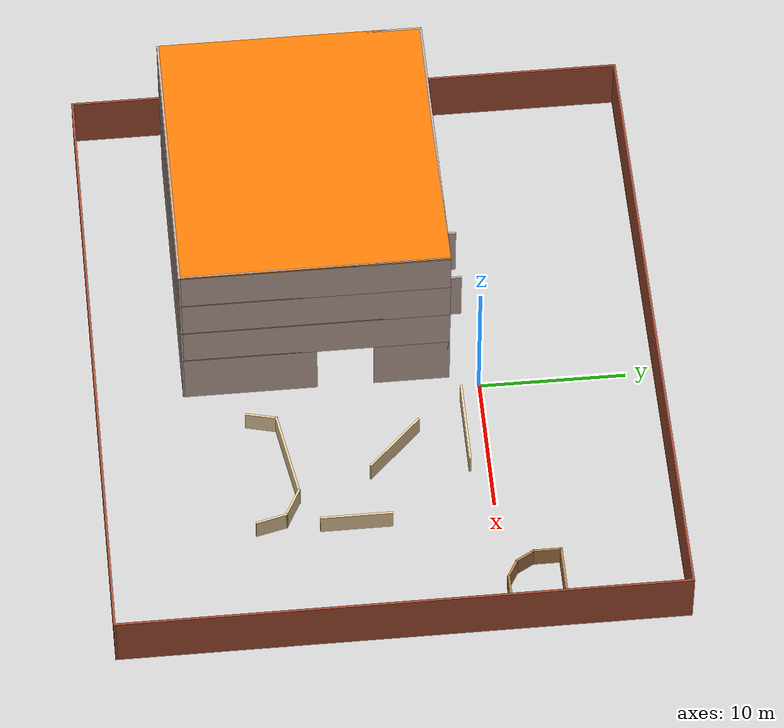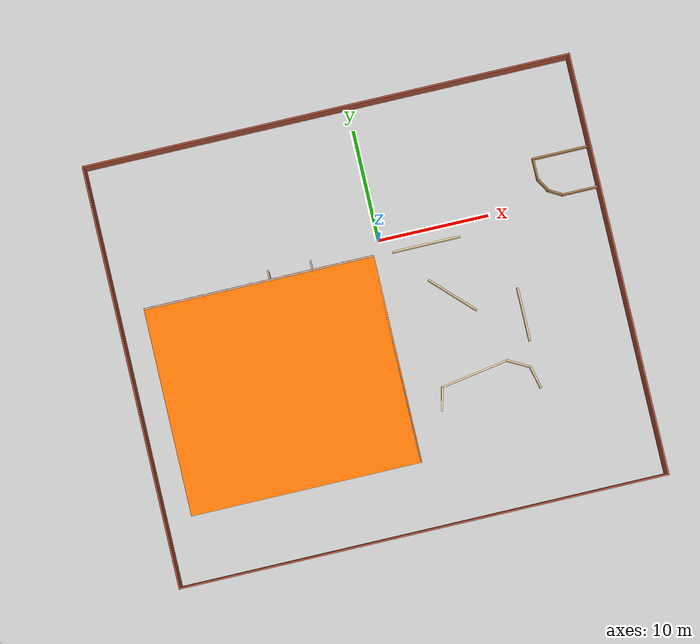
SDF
<sdf version="1.6">
 <world name="default">
  <light name="sun" type="directional">
   <pose>0 0 10 0 -0 0</pose>
   <diffuse>0.8 0.8 0.8 1</diffuse>
   <specular>0.2 0.2 0.2 1</specular>
   <attenuation>
    <range>1000</range>
    <constant>0.9</constant>
    <linear>0.01</linear>
    <quadratic>0.001</quadratic>
   </attenuation>
   <direction>-0.5 0.1 -0.9</direction>
  </light>
  <model name="ground_plane">
   <static>1</static>
   <link name="link">
    <collision name="collision">
     <geometry><plane><normal>0 0 1</normal><size>100 100</size></plane></geometry>
     <surface><friction><ode><mu>100</mu><mu2>50</mu2></ode></friction></surface>
    </collision>
    <visual name="visual">
     <cast_shadows>0</cast_shadows>
     <geometry><plane><normal>0 0 1</normal><size>100 100</size></plane></geometry>
     <material>
      <script><uri>file://media/materials/scripts/gazebo.material</uri><name>Gazebo/Grey</name></script>
     </material>
    </visual>
   </link>
  </model>
  <gravity>0 0 -9.8</gravity>
  <magnetic_field>6e-06 2.3e-05 -4.2e-05</magnetic_field>
  <atmosphere type="adiabatic"/>
  <physics name="default_physics" default="0" type="ode">
   <max_step_size>0.001</max_step_size>
   <real_time_factor>1</real_time_factor>
   <real_time_update_rate>1000</real_time_update_rate>
  </physics>
  <scene><ambient>0.4 0.4 0.4 1</ambient><background>0.7 0.7 0.7 1</background><shadows>1</shadows></scene>
  <audio><device>default</device></audio>
  <spherical_coordinates>
   <surface_model>EARTH_WGS84</surface_model>
   <latitude_deg>0</latitude_deg>
   <longitude_deg>0</longitude_deg>
   <elevation>0</elevation>
   <heading_deg>0</heading_deg>
  </spherical_coordinates>
  <model name="building2">
   <pose>-11 -10.325 0 0 -0 0</pose>
   <link name="Floor_0">
    <collision name="Floor_0_Collision">
     <geometry><box><size>20.15 18.15 0.1</size></box></geometry>
     <pose>0 0 0.05 0 -0 0</pose>
    </collision>
    <visual name="Floor_0_Visual">
     <pose>0 0 0.05 0 -0 0</pose>
     <geometry><box><size>20.15 18.15 0.1</size></box></geometry>
     <material>
      <script><uri>file://media/materials/scripts/gazebo.material</uri><name>Gazebo/Grey</name></script>
      <ambient>1 1 1 1</ambient>
     </material>
     <meta><layer>1</layer></meta>
    </visual>
    <pose>-0 -0.675 4 0 -0 0</pose>
   </link>
   <link name="Floor_2">
    <collision name="Floor_2_Collision">
     <geometry><box><size>20.15 18.15 0.1</size></box></geometry>
     <pose>0 0 0.05 0 -0 0</pose>
    </collision>
    <visual name="Floor_2_Visual">
     <pose>0 0 0.05 0 -0 0</pose>
     <geometry><box><size>20.15 18.15 0.1</size></box></geometry>
     <material>
      <script><uri>file://media/materials/scripts/gazebo.material</uri><name>Gazebo/Grey</name></script>
      <ambient>1 1 1 1</ambient>
     </material>
     <meta><layer>2</layer></meta>
    </visual>
    <pose>-0 -0.675 7 0 -0 0</pose>
   </link>
   <link name="Floor_3">
    <collision name="Floor_3_Collision">
     <geometry><box><size>20.15 18.15 0.1</size></box></geometry>
     <pose>0 0 0.05 0 -0 0</pose>
    </collision>
    <visual name="Floor_3_Visual">
     <pose>0 0 0.05 0 -0 0</pose>
     <geometry><box><size>20.15 18.15 0.1</size></box></geometry>
     <material>
      <script><uri>file://media/materials/scripts/gazebo.material</uri><name>Gazebo/Grey</name></script>
      <ambient>1 1 1 1</ambient>
     </material>
     <meta><layer>3</layer></meta>
    </visual>
    <pose>-0 -0.675 10 0 -0 0</pose>
   </link>
   <link name="Floor_8">
    <collision name="Floor_8_Collision">
     <geometry><box><size>20.15 18.15 0.1</size></box></geometry>
     <pose>0 0 0.05 0 -0 0</pose>
    </collision>
    <visual name="Floor_8_Visual">
     <pose>0 0 0.05 0 -0 0</pose>
     <geometry><box><size>20.15 18.15 0.1</size></box></geometry>
     <material>
      <script><uri>file://media/materials/scripts/gazebo.material</uri><name>Gazebo/Grey</name></script>
      <ambient>0.996078 0.47451 0.0196078 1</ambient>
     </material>
     <meta><layer>4</layer></meta>
    </visual>
    <pose>-0 -0.675 13 0 -0 0</pose>
   </link>
   <link name="Wall_11">
    <collision name="Wall_11_Collision">
     <geometry><box><size>1.5 0.15 4</size></box></geometry>
     <pose>0 0 2 0 -0 0</pose>
    </collision>
    <visual name="Wall_11_Visual">
     <pose>0 0 2 0 -0 0</pose>
     <geometry><box><size>1.5 0.15 4</size></box></geometry>
     <material>
      <script><uri>file://media/materials/scripts/gazebo.material</uri><name>Gazebo/Grey</name></script>
      <ambient>0.760784 0.662745 0.627451 1</ambient>
     </material>
     <meta><layer>0</layer></meta>
    </visual>
    <pose>0.8 9 0 0 -0 -1.5708</pose>
   </link>
   <link name="Wall_12">
    <collision name="Wall_12_Collision">
     <geometry><box><size>10.95 0.15 4</size></box></geometry>
     <pose>0 0 2 0 -0 0</pose>
    </collision>
    <visual name="Wall_12_Visual">
     <pose>0 0 2 0 -0 0</pose>
     <geometry><box><size>10.95 0.15 4</size></box></geometry>
     <material>
      <script><uri>file://media/materials/scripts/gazebo.material</uri><name>Gazebo/Grey</name></script>
      <ambient>0.760784 0.662745 0.627451 1</ambient>
     </material>
     <meta><layer>0</layer></meta>
    </visual>
    <pose>-4.6 8.325 0 0 -0 3.14159</pose>
   </link>
   <link name="Wall_14">
    <collision name="Wall_14_Collision">
     <geometry><box><size>18.15 0.15 4</size></box></geometry>
     <pose>0 0 2 0 -0 0</pose>
    </collision>
    <visual name="Wall_14_Visual">
     <pose>0 0 2 0 -0 0</pose>
     <geometry><box><size>18.15 0.15 4</size></box></geometry>
     <material>
      <script><uri>file://media/materials/scripts/gazebo.material</uri><name>Gazebo/Grey</name></script>
      <ambient>0.760784 0.662745 0.627451 1</ambient>
     </material>
     <meta><layer>0</layer></meta>
    </visual>
    <pose>-10 -0.675 0 0 -0 -1.5708</pose>
   </link>
   <link name="Wall_16">
    <collision name="Wall_16_Collision">
     <geometry><box><size>20.15 0.15 4</size></box></geometry>
     <pose>0 0 2 0 -0 0</pose>
    </collision>
    <visual name="Wall_16_Visual">
     <pose>0 0 2 0 -0 0</pose>
     <geometry><box><size>20.15 0.15 4</size></box></geometry>
     <material>
      <script><uri>file://media/materials/scripts/gazebo.material</uri><name>Gazebo/Grey</name></script>
      <ambient>0.760784 0.662745 0.627451 1</ambient>
     </material>
     <meta><layer>0</layer></meta>
    </visual>
    <pose>-0 -9.675 0 0 -0 0</pose>
   </link>
   <link name="Wall_24">
    <collision name="Wall_24_Collision">
     <geometry><box><size>18.15 0.15 3</size></box></geometry>
     <pose>0 0 1.5 0 -0 0</pose>
    </collision>
    <visual name="Wall_24_Visual">
     <pose>0 0 1.5 0 -0 0</pose>
     <geometry><box><size>18.15 0.15 3</size></box></geometry>
     <material>
      <script><uri>file://media/materials/scripts/gazebo.material</uri><name>Gazebo/Grey</name></script>
      <ambient>0.760784 0.662745 0.627451 1</ambient>
     </material>
     <meta><layer>1</layer></meta>
    </visual>
    <pose>-10 -0.675 4 0 -0 -1.5708</pose>
   </link>
   <link name="Wall_25">
    <collision name="Wall_25_Collision">
     <geometry><box><size>20.15 0.15 3</size></box></geometry>
     <pose>0 0 1.5 0 -0 0</pose>
    </collision>
    <visual name="Wall_25_Visual">
     <pose>0 0 1.5 0 -0 0</pose>
     <geometry><box><size>20.15 0.15 3</size></box></geometry>
     <material>
      <script><uri>file://media/materials/scripts/gazebo.material</uri><name>Gazebo/Grey</name></script>
      <ambient>0.760784 0.662745 0.627451 1</ambient>
     </material>
     <meta><layer>1</layer></meta>
    </visual>
    <pose>-0 -9.675 4 0 -0 0</pose>
   </link>
   <link name="Wall_31">
    <collision name="Wall_31_Collision">
     <geometry><box><size>20.15 0.15 3</size></box></geometry>
     <pose>0 0 1.5 0 -0 0</pose>
    </collision>
    <visual name="Wall_31_Visual">
     <pose>0 0 1.5 0 -0 0</pose>
     <geometry><box><size>20.15 0.15 3</size></box></geometry>
     <material>
      <script><uri>file://media/materials/scripts/gazebo.material</uri><name>Gazebo/Grey</name></script>
      <ambient>0.760784 0.662745 0.627451 1</ambient>
     </material>
     <meta><layer>1</layer></meta>
    </visual>
    <pose>-0 8.325 4 0 -0 0</pose>
   </link>
   <link name="Wall_33">
    <collision name="Wall_33_Collision">
     <geometry><box><size>18 0.15 3</size></box></geometry>
     <pose>0 0 1.5 0 -0 0</pose>
    </collision>
    <visual name="Wall_33_Visual">
     <pose>0 0 1.5 0 -0 0</pose>
     <geometry><box><size>18 0.15 3</size></box></geometry>
     <material>
      <script><uri>file://media/materials/scripts/gazebo.material</uri><name>Gazebo/Grey</name></script>
      <ambient>0.760784 0.662745 0.627451 1</ambient>
     </material>
     <meta><layer>1</layer></meta>
    </visual>
    <pose>10 -0.6 4 0 -0 -1.5708</pose>
   </link>
   <link name="Wall_4">
    <collision name="Wall_4_Collision">
     <geometry><box><size>5.15 0.15 4</size></box></geometry>
     <pose>0 0 2 0 -0 0</pose>
    </collision>
    <visual name="Wall_4_Visual">
     <pose>0 0 2 0 -0 0</pose>
     <geometry><box><size>5.15 0.15 4</size></box></geometry>
     <material>
      <script><uri>file://media/materials/scripts/gazebo.material</uri><name>Gazebo/Grey</name></script>
      <ambient>0.760784 0.662745 0.627451 1</ambient>
     </material>
     <meta><layer>0</layer></meta>
    </visual>
    <pose>10 5.825 0 0 -0 -1.5708</pose>
   </link>
   <link name="Wall_42">
    <collision name="Wall_42_Collision">
     <geometry><box><size>18.15 0.15 3</size></box></geometry>
     <pose>0 0 1.5 0 -0 0</pose>
    </collision>
    <visual name="Wall_42_Visual">
     <pose>0 0 1.5 0 -0 0</pose>
     <geometry><box><size>18.15 0.15 3</size></box></geometry>
     <material>
      <script><uri>file://media/materials/scripts/gazebo.material</uri><name>Gazebo/Grey</name></script>
      <ambient>0.760784 0.662745 0.627451 1</ambient>
     </material>
     <meta><layer>2</layer></meta>
    </visual>
    <pose>-10 -0.675 7 0 -0 -1.5708</pose>
   </link>
   <link name="Wall_43">
    <collision name="Wall_43_Collision">
     <geometry><box><size>20.15 0.15 3</size></box></geometry>
     <pose>0 0 1.5 0 -0 0</pose>
    </collision>
    <visual name="Wall_43_Visual">
     <pose>0 0 1.5 0 -0 0</pose>
     <geometry><box><size>20.15 0.15 3</size></box></geometry>
     <material>
      <script><uri>file://media/materials/scripts/gazebo.material</uri><name>Gazebo/Grey</name></script>
      <ambient>0.760784 0.662745 0.627451 1</ambient>
     </material>
     <meta><layer>2</layer></meta>
    </visual>
    <pose>-0 -9.675 7 0 -0 0</pose>
   </link>
   <link name="Wall_44">
    <collision name="Wall_44_Collision">
     <geometry><box><size>20.15 0.15 3</size></box></geometry>
     <pose>0 0 1.5 0 -0 0</pose>
    </collision>
    <visual name="Wall_44_Visual">
     <pose>0 0 1.5 0 -0 0</pose>
     <geometry><box><size>20.15 0.15 3</size></box></geometry>
     <material>
      <script><uri>file://media/materials/scripts/gazebo.material</uri><name>Gazebo/Grey</name></script>
      <ambient>0.760784 0.662745 0.627451 1</ambient>
     </material>
     <meta><layer>2</layer></meta>
    </visual>
    <pose>-0 8.325 7 0 -0 0</pose>
   </link>
   <link name="Wall_45">
    <collision name="Wall_45_Collision">
     <geometry><box><size>18 0.15 3</size></box></geometry>
     <pose>0 0 1.5 0 -0 0</pose>
    </collision>
    <visual name="Wall_45_Visual">
     <pose>0 0 1.5 0 -0 0</pose>
     <geometry><box><size>18 0.15 3</size></box></geometry>
     <material>
      <script><uri>file://media/materials/scripts/gazebo.material</uri><name>Gazebo/Grey</name></script>
      <ambient>0.760784 0.662745 0.627451 1</ambient>
     </material>
     <meta><layer>2</layer></meta>
    </visual>
    <pose>10 -0.6 7 0 -0 -1.5708</pose>
   </link>
   <link name="Wall_46">
    <collision name="Wall_46_Collision">
     <geometry><box><size>18.15 0.15 3</size></box></geometry>
     <pose>0 0 1.5 0 -0 0</pose>
    </collision>
    <visual name="Wall_46_Visual">
     <pose>0 0 1.5 0 -0 0</pose>
     <geometry><box><size>18.15 0.15 3</size></box></geometry>
     <material>
      <script><uri>file://media/materials/scripts/gazebo.material</uri><name>Gazebo/Grey</name></script>
      <ambient>0.760784 0.662745 0.627451 1</ambient>
     </material>
     <meta><layer>3</layer></meta>
    </visual>
    <pose>-10 -0.675 10 0 -0 -1.5708</pose>
   </link>
   <link name="Wall_47">
    <collision name="Wall_47_Collision">
     <geometry><box><size>20.15 0.15 3</size></box></geometry>
     <pose>0 0 1.5 0 -0 0</pose>
    </collision>
    <visual name="Wall_47_Visual">
     <pose>0 0 1.5 0 -0 0</pose>
     <geometry><box><size>20.15 0.15 3</size></box></geometry>
     <material>
      <script><uri>file://media/materials/scripts/gazebo.material</uri><name>Gazebo/Grey</name></script>
      <ambient>0.760784 0.662745 0.627451 1</ambient>
     </material>
     <meta><layer>3</layer></meta>
    </visual>
    <pose>-0 -9.675 10 0 -0 0</pose>
   </link>
   <link name="Wall_48">
    <collision name="Wall_48_Collision">
     <geometry><box><size>20.15 0.15 3</size></box></geometry>
     <pose>0 0 1.5 0 -0 0</pose>
    </collision>
    <visual name="Wall_48_Visual">
     <pose>0 0 1.5 0 -0 0</pose>
     <geometry><box><size>20.15 0.15 3</size></box></geometry>
     <material>
      <script><uri>file://media/materials/scripts/gazebo.material</uri><name>Gazebo/Grey</name></script>
      <ambient>0.760784 0.662745 0.627451 1</ambient>
     </material>
     <meta><layer>3</layer></meta>
    </visual>
    <pose>-0 8.325 10 0 -0 0</pose>
   </link>
   <link name="Wall_49">
    <collision name="Wall_49_Collision">
     <geometry><box><size>18 0.15 3</size></box></geometry>
     <pose>0 0 1.5 0 -0 0</pose>
    </collision>
    <visual name="Wall_49_Visual">
     <pose>0 0 1.5 0 -0 0</pose>
     <geometry><box><size>18 0.15 3</size></box></geometry>
     <material>
      <script><uri>file://media/materials/scripts/gazebo.material</uri><name>Gazebo/Grey</name></script>
      <ambient>0.760784 0.662745 0.627451 1</ambient>
     </material>
     <meta><layer>3</layer></meta>
    </visual>
    <pose>10 -0.6 10 0 -0 -1.5708</pose>
   </link>
   <link name="Wall_6">
    <collision name="Wall_6_Collision">
     <geometry><box><size>9.15 0.15 4</size></box></geometry>
     <pose>0 0 2 0 -0 0</pose>
    </collision>
    <visual name="Wall_6_Visual">
     <pose>0 0 2 0 -0 0</pose>
     <geometry><box><size>9.15 0.15 4</size></box></geometry>
     <material>
      <script><uri>file://media/materials/scripts/gazebo.material</uri><name>Gazebo/Grey</name></script>
      <ambient>0.760784 0.662745 0.627451 1</ambient>
     </material>
     <meta><layer>0</layer></meta>
    </visual>
    <pose>10 -5.175 0 0 -0 -1.5708</pose>
   </link>
   <link name="Wall_76">
    <collision name="Wall_76_Collision">
     <geometry><box><size>18.15 0.15 0.1</size></box></geometry>
     <pose>0 0 0.05 0 -0 0</pose>
    </collision>
    <visual name="Wall_76_Visual">
     <pose>0 0 0.05 0 -0 0</pose>
     <geometry><box><size>18.15 0.15 0.1</size></box></geometry>
     <material>
      <script><uri>file://media/materials/scripts/gazebo.material</uri><name>Gazebo/Grey</name></script>
      <ambient>0.760784 0.662745 0.627451 1</ambient>
     </material>
     <meta><layer>4</layer></meta>
    </visual>
    <pose>-10 -0.675 13 0 -0 -1.5708</pose>
   </link>
   <link name="Wall_77">
    <collision name="Wall_77_Collision">
     <geometry><box><size>20.15 0.15 0.1</size></box></geometry>
     <pose>0 0 0.05 0 -0 0</pose>
    </collision>
    <visual name="Wall_77_Visual">
     <pose>0 0 0.05 0 -0 0</pose>
     <geometry><box><size>20.15 0.15 0.1</size></box></geometry>
     <material>
      <script><uri>file://media/materials/scripts/gazebo.material</uri><name>Gazebo/Grey</name></script>
      <ambient>0.760784 0.662745 0.627451 1</ambient>
     </material>
     <meta><layer>4</layer></meta>
    </visual>
    <pose>-0 -9.675 13 0 -0 0</pose>
   </link>
   <link name="Wall_78">
    <collision name="Wall_78_Collision">
     <geometry><box><size>20.15 0.15 0.1</size></box></geometry>
     <pose>0 0 0.05 0 -0 0</pose>
    </collision>
    <visual name="Wall_78_Visual">
     <pose>0 0 0.05 0 -0 0</pose>
     <geometry><box><size>20.15 0.15 0.1</size></box></geometry>
     <material>
      <script><uri>file://media/materials/scripts/gazebo.material</uri><name>Gazebo/Grey</name></script>
      <ambient>0.760784 0.662745 0.627451 1</ambient>
     </material>
     <meta><layer>4</layer></meta>
    </visual>
    <pose>-0 8.325 13 0 -0 0</pose>
   </link>
   <link name="Wall_79">
    <collision name="Wall_79_Collision">
     <geometry><box><size>18 0.15 0.1</size></box></geometry>
     <pose>0 0 0.05 0 -0 0</pose>
    </collision>
    <visual name="Wall_79_Visual">
     <pose>0 0 0.05 0 -0 0</pose>
     <geometry><box><size>18 0.15 0.1</size></box></geometry>
     <material>
      <script><uri>file://media/materials/scripts/gazebo.material</uri><name>Gazebo/Grey</name></script>
      <ambient>0.760784 0.662745 0.627451 1</ambient>
     </material>
     <meta><layer>4</layer></meta>
    </visual>
    <pose>10 -0.6 13 0 -0 -1.5708</pose>
   </link>
   <link name="Wall_8">
    <collision name="Wall_8_Collision">
     <geometry><box><size>5.5 0.15 4</size></box></geometry>
     <pose>0 0 2 0 -0 0</pose>
    </collision>
    <visual name="Wall_8_Visual">
     <pose>0 0 2 0 -0 0</pose>
     <geometry><box><size>5.5 0.15 4</size></box></geometry>
     <material>
      <script><uri>file://media/materials/scripts/gazebo.material</uri><name>Gazebo/Grey</name></script>
      <ambient>0.760784 0.662745 0.627451 1</ambient>
     </material>
     <meta><layer>0</layer></meta>
    </visual>
    <pose>7.325 8.325 0 0 -0 3.14159</pose>
   </link>
   <link name="Wall_9">
    <collision name="Wall_9_Collision">
     <geometry><box><size>1.5 0.15 4</size></box></geometry>
     <pose>0 0 2 0 -0 0</pose>
    </collision>
    <visual name="Wall_9_Visual">
     <pose>0 0 2 0 -0 0</pose>
     <geometry><box><size>1.5 0.15 4</size></box></geometry>
     <material>
      <script><uri>file://media/materials/scripts/gazebo.material</uri><name>Gazebo/Grey</name></script>
      <ambient>0.760784 0.662745 0.627451 1</ambient>
     </material>
     <meta><layer>0</layer></meta>
    </visual>
    <pose>4.65 9 0 0 -0 1.5708</pose>
   </link>
   <static>1</static>
  </model>
  <model name="wall11">
   <pose>-2 -7 0 0 -0 0</pose>
   <link name="Wall_0">
    <collision name="Wall_0_Collision">
     <geometry><box><size>44.15 0.15 4</size></box></geometry>
     <pose>0 0 2 0 -0 0</pose>
    </collision>
    <visual name="Wall_0_Visual">
     <pose>0 0 2 0 -0 0</pose>
     <geometry><box><size>44.15 0.15 4</size></box></geometry>
     <material>
      <script><uri>file://media/materials/scripts/gazebo.material</uri><name>Gazebo/Bricks</name></script>
      <ambient>1 1 1 1</ambient>
     </material>
     <meta><layer>0</layer></meta>
    </visual>
    <pose>0 19 0 0 -0 0</pose>
   </link>
   <link name="Wall_2">
    <collision name="Wall_2_Collision">
     <geometry><box><size>38.15 0.15 4</size></box></geometry>
     <pose>0 0 2 0 -0 0</pose>
    </collision>
    <visual name="Wall_2_Visual">
     <pose>0 0 2 0 -0 0</pose>
     <geometry><box><size>38.15 0.15 4</size></box></geometry>
     <material>
      <script><uri>file://media/materials/scripts/gazebo.material</uri><name>Gazebo/Bricks</name></script>
      <ambient>1 1 1 1</ambient>
     </material>
     <meta><layer>0</layer></meta>
    </visual>
    <pose>22 0 0 0 -0 -1.5708</pose>
   </link>
   <link name="Wall_4">
    <collision name="Wall_4_Collision">
     <geometry><box><size>44.15 0.15 4</size></box></geometry>
     <pose>0 0 2 0 -0 0</pose>
    </collision>
    <visual name="Wall_4_Visual">
     <pose>0 0 2 0 -0 0</pose>
     <geometry><box><size>44.15 0.15 4</size></box></geometry>
     <material>
      <script><uri>file://media/materials/scripts/gazebo.material</uri><name>Gazebo/Bricks</name></script>
      <ambient>1 1 1 1</ambient>
     </material>
     <meta><layer>0</layer></meta>
    </visual>
    <pose>0 -19 0 0 -0 3.14159</pose>
   </link>
   <link name="Wall_6">
    <collision name="Wall_6_Collision">
     <geometry><box><size>38.15 0.15 4</size></box></geometry>
     <pose>0 0 2 0 -0 0</pose>
    </collision>
    <visual name="Wall_6_Visual">
     <pose>0 0 2 0 -0 0</pose>
     <geometry><box><size>38.15 0.15 4</size></box></geometry>
     <material>
      <script><uri>file://media/materials/scripts/gazebo.material</uri><name>Gazebo/Bricks</name></script>
      <ambient>1 1 1 1</ambient>
     </material>
     <meta><layer>0</layer></meta>
    </visual>
    <pose>-22 0 0 0 -0 1.5708</pose>
   </link>
   <static>1</static>
  </model>
  <model name="Untitled112">
   <pose>6.00798 -8.67297 0 0 -0 0</pose>
   <link name="Wall_0">
    <collision name="Wall_0_Collision">
     <geometry><box><size>6.15 0.15 1.5</size></box></geometry>
     <pose>0 0 0.75 0 -0 0</pose>
    </collision>
    <visual name="Wall_0_Visual">
     <pose>0 0 0.75 0 -0 0</pose>
     <geometry><box><size>6.15 0.15 1.5</size></box></geometry>
     <material>
      <script><uri>file://media/materials/scripts/gazebo.material</uri><name>Gazebo/Grey</name></script>
      <ambient>0.921569 0.807843 0.615686 1</ambient>
     </material>
     <meta><layer>0</layer></meta>
    </visual>
    <pose>-2.00798 7.34298 0 0 -0 0</pose>
   </link>
   <link name="Wall_10">
    <collision name="Wall_10_Collision">
     <geometry><box><size>2.21155 0.15 1.5</size></box></geometry>
     <pose>0 0 0.75 0 -0 0</pose>
    </collision>
    <visual name="Wall_10_Visual">
     <pose>0 0 0.75 0 -0 0</pose>
     <geometry><box><size>2.21155 0.15 1.5</size></box></geometry>
     <material>
      <script><uri>file://media/materials/scripts/gazebo.material</uri><name>Gazebo/Grey</name></script>
      <ambient>0.921569 0.807843 0.615686 1</ambient>
     </material>
     <meta><layer>0</layer></meta>
    </visual>
    <pose>4.74202 -6.32702 0 0 -0 -1.32582</pose>
   </link>
   <link name="Wall_2">
    <collision name="Wall_2_Collision">
     <geometry><box><size>5.09975 0.15 1.5</size></box></geometry>
     <pose>0 0 0.75 0 -0 0</pose>
    </collision>
    <visual name="Wall_2_Visual">
     <pose>0 0 0.75 0 -0 0</pose>
     <geometry><box><size>5.09975 0.15 1.5</size></box></geometry>
     <material>
      <script><uri>file://media/materials/scripts/gazebo.material</uri><name>Gazebo/Grey</name></script>
      <ambient>0.921569 0.807843 0.615686 1</ambient>
     </material>
     <meta><layer>0</layer></meta>
    </visual>
    <pose>-0.757975 2.42298 0 0 -0 -0.785398</pose>
   </link>
   <link name="Wall_4">
    <collision name="Wall_4_Collision">
     <geometry><box><size>4.853 0.15 1.5</size></box></geometry>
     <pose>0 0 0.75 0 -0 0</pose>
    </collision>
    <visual name="Wall_4_Visual">
     <pose>0 0 0.75 0 -0 0</pose>
     <geometry><box><size>4.853 0.15 1.5</size></box></geometry>
     <material>
      <script><uri>file://media/materials/scripts/gazebo.material</uri><name>Gazebo/Grey</name></script>
      <ambient>0.921569 0.807843 0.615686 1</ambient>
     </material>
     <meta><layer>0</layer></meta>
    </visual>
    <pose>4.99202 -0.678525 0 0 -0 -1.5708</pose>
   </link>
   <link name="Wall_6">
    <collision name="Wall_6_Collision">
     <geometry><box><size>2.21155 0.15 1.5</size></box></geometry>
     <pose>0 0 0.75 0 -0 0</pose>
    </collision>
    <visual name="Wall_6_Visual">
     <pose>0 0 0.75 0 -0 0</pose>
     <geometry><box><size>2.21155 0.15 1.5</size></box></geometry>
     <material>
      <script><uri>file://media/materials/scripts/gazebo.material</uri><name>Gazebo/Grey</name></script>
      <ambient>0.921569 0.807843 0.615686 1</ambient>
     </material>
     <meta><layer>0</layer></meta>
    </visual>
    <pose>-3.75798 -6.32702 0 0 -0 1.32582</pose>
   </link>
   <link name="Wall_7">
    <collision name="Wall_7_Collision">
     <geometry><box><size>6.33142 0.15 1.5</size></box></geometry>
     <pose>0 0 0.75 0 -0 0</pose>
    </collision>
    <visual name="Wall_7_Visual">
     <pose>0 0 0.75 0 -0 0</pose>
     <geometry><box><size>6.33142 0.15 1.5</size></box></geometry>
     <material>
      <script><uri>file://media/materials/scripts/gazebo.material</uri><name>Gazebo/Grey</name></script>
      <ambient>0.921569 0.807843 0.615686 1</ambient>
     </material>
     <meta><layer>0</layer></meta>
    </visual>
    <pose>-0.457975 -4.82702 0 0 -0 0.162489</pose>
   </link>
   <link name="Wall_9">
    <collision name="Wall_9_Collision">
     <geometry><box><size>2.28206 0.15 1.5</size></box></geometry>
     <pose>0 0 0.75 0 -0 0</pose>
    </collision>
    <visual name="Wall_9_Visual">
     <pose>0 0 0.75 0 -0 0</pose>
     <geometry><box><size>2.28206 0.15 1.5</size></box></geometry>
     <material>
      <script><uri>file://media/materials/scripts/gazebo.material</uri><name>Gazebo/Grey</name></script>
      <ambient>0.921569 0.807843 0.615686 1</ambient>
     </material>
     <meta><layer>0</layer></meta>
    </visual>
    <pose>3.55052 -4.82702 0 0 -0 -0.488192</pose>
   </link>
   <static>1</static>
  </model>
  <model name="Untitled">
   <pose>17.4299 2.0424 0 0 -0 0</pose>
   <link name="Wall_14">
    <collision name="Wall_14_Collision">
     <geometry><box><size>1.5 0.15 1.5</size></box></geometry>
     <pose>0 0 0.75 0 -0 0</pose>
    </collision>
    <visual name="Wall_14_Visual">
     <pose>0 0 0.75 0 -0 0</pose>
     <geometry><box><size>1.5 0.15 1.5</size></box></geometry>
     <material>
      <script><uri>file://media/materials/scripts/gazebo.material</uri><name>Gazebo/Wood</name></script>
      <ambient>1 1 1 1</ambient>
     </material>
     <meta><layer>0</layer></meta>
    </visual>
    <pose>-2.12076 -0.573797 0 0 -0 -1.04715</pose>
   </link>
   <link name="Wall_17">
    <collision name="Wall_17_Collision">
     <geometry><box><size>1.5 0.15 1.5</size></box></geometry>
     <pose>0 0 0.75 0 -0 0</pose>
    </collision>
    <visual name="Wall_17_Visual">
     <pose>0 0 0.75 0 -0 0</pose>
     <geometry><box><size>1.5 0.15 1.5</size></box></geometry>
     <material>
      <script><uri>file://media/materials/scripts/gazebo.material</uri><name>Gazebo/Wood</name></script>
      <ambient>1 1 1 1</ambient>
     </material>
     <meta><layer>0</layer></meta>
    </visual>
    <pose>-1.19876 -1.4958 0 0 -0 -0.523649</pose>
   </link>
   <link name="Wall_18">
    <collision name="Wall_18_Collision">
     <geometry><box><size>3.25 0.15 1.5</size></box></geometry>
     <pose>0 0 0.75 0 -0 0</pose>
    </collision>
    <visual name="Wall_18_Visual">
     <pose>0 0 0.75 0 -0 0</pose>
     <geometry><box><size>3.25 0.15 1.5</size></box></geometry>
     <material>
      <script><uri>file://media/materials/scripts/gazebo.material</uri><name>Gazebo/Wood</name></script>
      <ambient>1 1 1 1</ambient>
     </material>
     <meta><layer>0</layer></meta>
    </visual>
    <pose>0.935741 -1.8333 0 0 -0 0</pose>
   </link>
   <link name="Wall_5">
    <collision name="Wall_5_Collision">
     <geometry><box><size>5 0.15 1.5</size></box></geometry>
     <pose>0 0 0.75 0 -0 0</pose>
    </collision>
    <visual name="Wall_5_Visual">
     <pose>0 0 0.75 0 -0 0</pose>
     <geometry><box><size>5 0.15 1.5</size></box></geometry>
     <material>
      <script><uri>file://media/materials/scripts/gazebo.material</uri><name>Gazebo/Wood</name></script>
      <ambient>1 1 1 1</ambient>
     </material>
     <meta><layer>0</layer></meta>
    </visual>
    <pose>-0.03329 1.86074 0 0 -0 1.5e-05</pose>
   </link>
   <link name="Wall_7">
    <collision name="Wall_7_Collision">
     <geometry><box><size>2 0.15 1.5</size></box></geometry>
     <pose>0 0 0.75 0 -0 0</pose>
    </collision>
    <visual name="Wall_7_Visual">
     <pose>0 0 0.75 0 -0 0</pose>
     <geometry><box><size>2 0.15 1.5</size></box></geometry>
     <material>
      <script><uri>file://media/materials/scripts/gazebo.material</uri><name>Gazebo/Wood</name></script>
      <ambient>1 1 1 1</ambient>
     </material>
     <meta><layer>0</layer></meta>
    </visual>
    <pose>-2.45826 0.935703 0 0 -0 -1.5708</pose>
   </link>
   <static>1</static>
  </model>
 </world>
</sdf>
